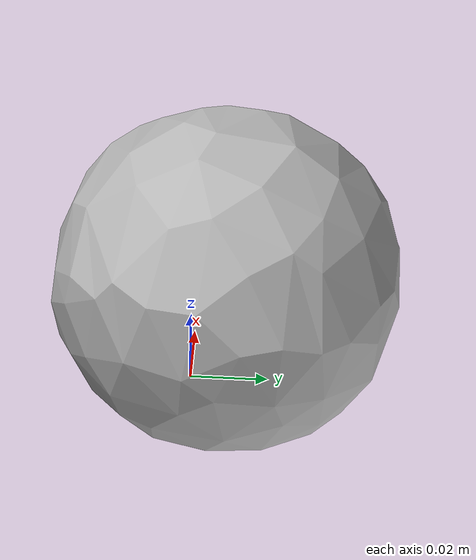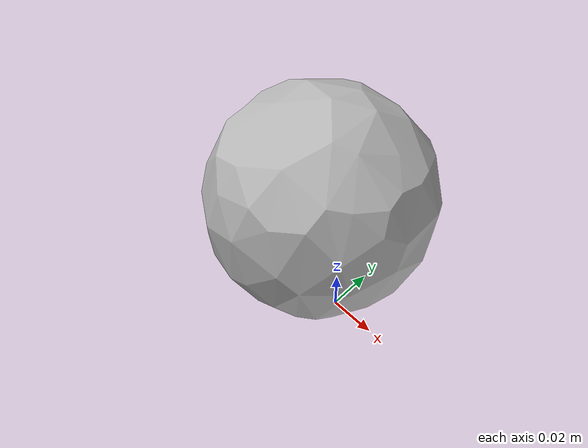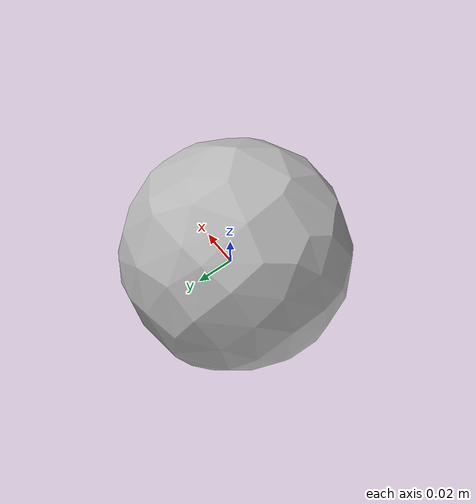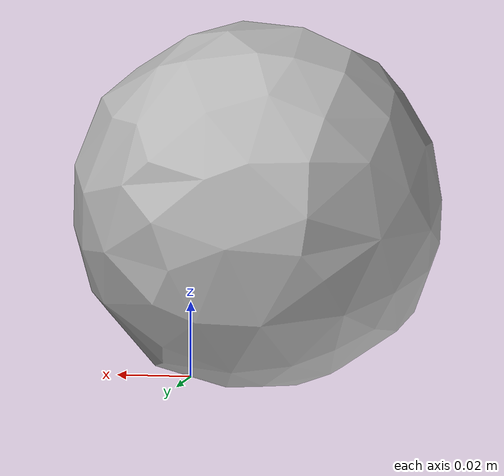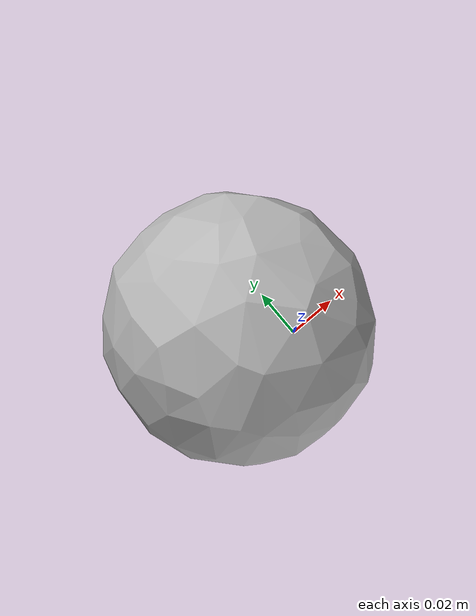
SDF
<?xml version='1.0'?>
<sdf version="1.4">
  <model name="054_softball">
    <static>false</static>
    <link name="link">
      <inertial>
        <pose>-0.01965202966544804 0.010866950097726813 0.046809079353850404 0.8805712392432042 1.4236434494395518 -0.5740481241321587</pose>
        <mass>0.046559287064444586</mass>
        <inertia>
          <ixx>4.328380622509192e-05</ixx>
          <ixy>-5.568759314736147e-22</ixy>
          <ixz>-1.137723384309757e-22</ixz>
          <iyy>4.313257947643955e-05</iyy>
          <iyz>4.446885099396447e-22</iyz>
          <izz>4.2802550744336734e-05</izz>
        </inertia>
      </inertial>
      <collision name="collision">
        <geometry>
          <mesh>
            <!-- Use a downsampled mesh for collisions -->
            <uri>model:///054_softball/054_softball_250_collision.stl</uri>
	        </mesh>
        </geometry>
        <surface>
      </surface>
      </collision>
      <visual name="visual">
        <geometry>
          <mesh>
            <uri>model:///054_softball/textured.obj</uri>
	        </mesh>
        </geometry>
        <material>
          <script>
            <uri>model:///054_softball/054_softball.material</uri>
            <name>054_softball</name>
          </script>
        </material>
      </visual>
    </link>
  </model>
</sdf>
